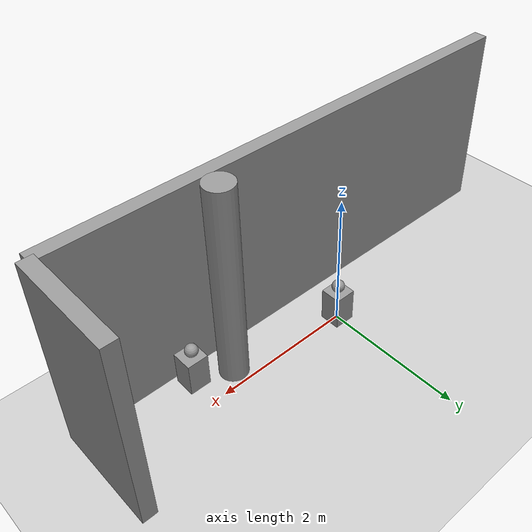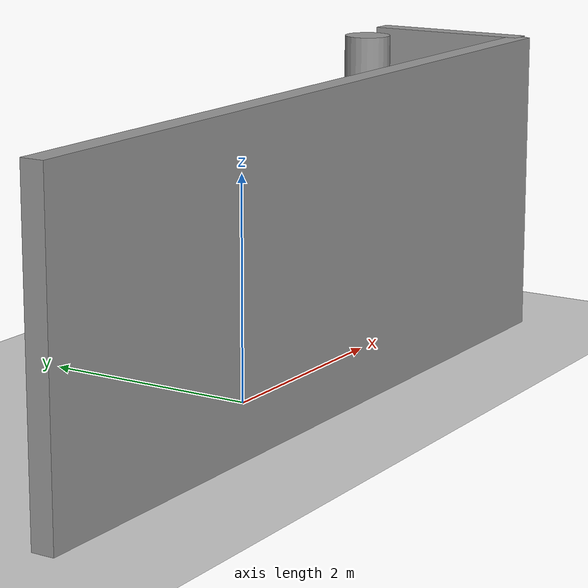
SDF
<sdf version="1.6">
 <world name="default">
  <model name="ground_plane">
   <static>1</static>
   <link name="link">
    <collision name="collision">
     <geometry><plane><normal>0 0 1</normal><size>100 100</size></plane></geometry>
     <surface><friction><ode><mu>100</mu><mu2>50</mu2></ode></friction></surface>
    </collision>
    <visual name="visual">
     <cast_shadows>0</cast_shadows>
     <geometry><plane><normal>0 0 1</normal><size>100 100</size></plane></geometry>
     <material>
      <script><uri>file://media/materials/scripts/gazebo.material</uri><name>Gazebo/Grey</name></script>
     </material>
    </visual>
    <velocity_decay><linear>0</linear><angular>0</angular></velocity_decay>
   </link>
  </model>
  <model name="grey_wall_3_0">
   <link name="link">
    <pose>0 0 1.4 0 -0 0</pose>
    <velocity_decay><linear>0</linear><angular>0</angular></velocity_decay>
    <inertial>
     <mass>1</mass>
     <inertia><ixx>1</ixx><ixy>0</ixy><ixz>0</ixz><iyy>1</iyy><iyz>0</iyz><izz>1</izz></inertia>
    </inertial>
    <visual name="visual">
     <cast_shadows>0</cast_shadows>
     <geometry><box><size>1.52 0.2 2.8</size></box></geometry>
     <material>
      <script>
       <uri>model://grey_wall/materials/scripts</uri>
       <uri>model://grey_wall/materials/textures</uri>
       <name>vrc/grey_wall</name>
      </script>
      <ambient>1 1 1 1</ambient>
      <diffuse>1 1 1 1</diffuse>
      <specular>0 0 0 1</specular>
      <emissive>0 0 0 1</emissive>
      <shader type="vertex"><normal_map>__default__</normal_map></shader>
     </material>
    </visual>
    <collision name="collision">
     <geometry><box><size>1.52 0.2 2.8</size></box></geometry>
     <surface>
      <friction>
       <ode><mu>1</mu><mu2>1</mu2><fdir1>0 0 0</fdir1><slip1>0</slip1><slip2>0</slip2></ode>
       <torsional>
        <coefficient>1</coefficient>
        <patch_radius>0</patch_radius>
        <surface_radius>0</surface_radius>
        <use_patch_radius>1</use_patch_radius>
        <ode><slip>0</slip></ode>
       </torsional>
      </friction>
      <bounce><restitution_coefficient>0</restitution_coefficient><threshold>1e+06</threshold></bounce>
      <contact>
       <collide_without_contact>0</collide_without_contact>
       <collide_without_contact_bitmask>1</collide_without_contact_bitmask>
       <collide_bitmask>1</collide_bitmask>
       <ode>
        <soft_cfm>0</soft_cfm>
        <soft_erp>0.2</soft_erp>
        <kp>1e+13</kp>
        <kd>1</kd>
        <max_vel>0.01</max_vel>
        <min_depth>0</min_depth>
       </ode>
       <bullet>
        <split_impulse>1</split_impulse>
        <split_impulse_penetration_threshold>-0.01</split_impulse_penetration_threshold>
        <soft_cfm>0</soft_cfm>
        <soft_erp>0.2</soft_erp>
        <kp>1e+13</kp>
        <kd>1</kd>
       </bullet>
      </contact>
     </surface>
    </collision>
   </link>
   <static>1</static>
   <pose>3.66 0 0 0 0 -1.57102</pose>
  </model>
  <model name="grey_wall_0_0">
   <link name="link">
    <pose>0 0 1.4 0 -0 0</pose>
    <velocity_decay><linear>0</linear><angular>0</angular></velocity_decay>
    <inertial>
     <mass>1</mass>
     <inertia><ixx>1</ixx><ixy>0</ixy><ixz>0</ixz><iyy>1</iyy><iyz>0</iyz><izz>1</izz></inertia>
    </inertial>
    <visual name="visual">
     <cast_shadows>0</cast_shadows>
     <geometry><box><size>7.32 0.2 2.8</size></box></geometry>
     <material>
      <script>
       <uri>model://grey_wall/materials/scripts</uri>
       <uri>model://grey_wall/materials/textures</uri>
       <name>vrc/grey_wall</name>
      </script>
      <ambient>1 1 1 1</ambient>
      <diffuse>1 1 1 1</diffuse>
      <specular>0 0 0 1</specular>
      <emissive>0 0 0 1</emissive>
      <shader type="vertex"><normal_map>__default__</normal_map></shader>
     </material>
    </visual>
    <collision name="collision">
     <geometry><box><size>7.32 0.2 2.8</size></box></geometry>
     <surface>
      <friction>
       <ode><mu>1</mu><mu2>1</mu2><fdir1>0 0 0</fdir1><slip1>0</slip1><slip2>0</slip2></ode>
       <torsional>
        <coefficient>1</coefficient>
        <patch_radius>0</patch_radius>
        <surface_radius>0</surface_radius>
        <use_patch_radius>1</use_patch_radius>
        <ode><slip>0</slip></ode>
       </torsional>
      </friction>
      <bounce><restitution_coefficient>0</restitution_coefficient><threshold>1e+06</threshold></bounce>
      <contact>
       <collide_without_contact>0</collide_without_contact>
       <collide_without_contact_bitmask>1</collide_without_contact_bitmask>
       <collide_bitmask>1</collide_bitmask>
       <ode>
        <soft_cfm>0</soft_cfm>
        <soft_erp>0.2</soft_erp>
        <kp>1e+13</kp>
        <kd>1</kd>
        <max_vel>0.01</max_vel>
        <min_depth>0</min_depth>
       </ode>
       <bullet>
        <split_impulse>1</split_impulse>
        <split_impulse_penetration_threshold>-0.01</split_impulse_penetration_threshold>
        <soft_cfm>0</soft_cfm>
        <soft_erp>0.2</soft_erp>
        <kp>1e+13</kp>
        <kd>1</kd>
       </bullet>
      </contact>
     </surface>
    </collision>
   </link>
   <static>1</static>
   <pose>0 -0.76 0 0 -0 0</pose>
  </model>
  <model name="fuel_cutting_station_1_clone_1">
   <link name="link">
    <pose>0 0 -0.25 0 -0 0</pose>
    <inertial>
     <mass>1</mass>
     <inertia>
      <ixx>0.166667</ixx>
      <ixy>0</ixy>
      <ixz>0</ixz>
      <iyy>0.166667</iyy>
      <iyz>0</iyz>
      <izz>0.166667</izz>
     </inertia>
    </inertial>
    <visual name="visual">
     <geometry><box><size>0.3 0.3 0.5</size></box></geometry>
     <material>
      <script><name>Gazebo/Grey</name><uri>file://media/materials/scripts/gazebo.material</uri></script>
      <ambient>0.3 0.3 0.3 1</ambient>
      <diffuse>0.7 0.7 0.7 1</diffuse>
      <specular>0.01 0.01 0.01 1</specular>
      <emissive>0 0 0 1</emissive>
      <shader type="vertex"><normal_map>__default__</normal_map></shader>
     </material>
    </visual>
    <collision name="collision">
     <geometry><box><size>1 1 1</size></box></geometry>
     <surface>
      <friction>
       <ode><mu>1</mu><mu2>1</mu2><fdir1>0 0 0</fdir1><slip1>0</slip1><slip2>0</slip2></ode>
       <torsional>
        <coefficient>1</coefficient>
        <patch_radius>0</patch_radius>
        <surface_radius>0</surface_radius>
        <use_patch_radius>1</use_patch_radius>
        <ode><slip>0</slip></ode>
       </torsional>
      </friction>
      <bounce><restitution_coefficient>0</restitution_coefficient><threshold>1e+06</threshold></bounce>
      <contact>
       <collide_without_contact>0</collide_without_contact>
       <collide_without_contact_bitmask>1</collide_without_contact_bitmask>
       <collide_bitmask>1</collide_bitmask>
       <ode>
        <soft_cfm>0</soft_cfm>
        <soft_erp>0.2</soft_erp>
        <kp>1e+13</kp>
        <kd>1</kd>
        <max_vel>0.01</max_vel>
        <min_depth>0</min_depth>
       </ode>
       <bullet>
        <split_impulse>1</split_impulse>
        <split_impulse_penetration_threshold>-0.01</split_impulse_penetration_threshold>
        <soft_cfm>0</soft_cfm>
        <soft_erp>0.2</soft_erp>
        <kp>1e+13</kp>
        <kd>1</kd>
       </bullet>
      </contact>
     </surface>
    </collision>
   </link>
   <static>0</static>
   <pose>0 0 0.5 0 -0 0</pose>
  </model>
  <model name="fuel_cutting_station_1_0">
   <link name="link">
    <pose>0 0 -0.25 0 -0 0</pose>
    <inertial>
     <mass>1</mass>
     <inertia>
      <ixx>0.166667</ixx>
      <ixy>0</ixy>
      <ixz>0</ixz>
      <iyy>0.166667</iyy>
      <iyz>0</iyz>
      <izz>0.166667</izz>
     </inertia>
    </inertial>
    <visual name="visual">
     <geometry><box><size>0.3 0.3 0.5</size></box></geometry>
     <material>
      <script><name>Gazebo/Grey</name><uri>file://media/materials/scripts/gazebo.material</uri></script>
      <ambient>0.3 0.3 0.3 1</ambient>
      <diffuse>0.7 0.7 0.7 1</diffuse>
      <specular>0.01 0.01 0.01 1</specular>
      <emissive>0 0 0 1</emissive>
      <shader type="vertex"><normal_map>__default__</normal_map></shader>
     </material>
    </visual>
    <collision name="collision">
     <geometry><box><size>0.3 0.3 0.5</size></box></geometry>
     <surface>
      <friction>
       <ode><mu>1</mu><mu2>1</mu2><fdir1>0 0 0</fdir1><slip1>0</slip1><slip2>0</slip2></ode>
       <torsional>
        <coefficient>1</coefficient>
        <patch_radius>0</patch_radius>
        <surface_radius>0</surface_radius>
        <use_patch_radius>1</use_patch_radius>
        <ode><slip>0</slip></ode>
       </torsional>
      </friction>
      <bounce><restitution_coefficient>0</restitution_coefficient><threshold>1e+06</threshold></bounce>
      <contact>
       <collide_without_contact>0</collide_without_contact>
       <collide_without_contact_bitmask>1</collide_without_contact_bitmask>
       <collide_bitmask>1</collide_bitmask>
       <ode>
        <soft_cfm>0</soft_cfm>
        <soft_erp>0.2</soft_erp>
        <kp>1e+13</kp>
        <kd>1</kd>
        <max_vel>0.01</max_vel>
        <min_depth>0</min_depth>
       </ode>
       <bullet>
        <split_impulse>1</split_impulse>
        <split_impulse_penetration_threshold>-0.01</split_impulse_penetration_threshold>
        <soft_cfm>0</soft_cfm>
        <soft_erp>0.2</soft_erp>
        <kp>1e+13</kp>
        <kd>1</kd>
       </bullet>
      </contact>
     </surface>
    </collision>
   </link>
   <static>0</static>
   <pose>2.16 -0.44 0.5 0 -0 0</pose>
  </model>
  <model name="shippint_cask_0_clone_0_0_0">
   <link name="link">
    <pose>0 0 -1.5 0 -0 0</pose>
    <inertial>
     <mass>1</mass>
     <inertia><ixx>0.145833</ixx><ixy>0</ixy><ixz>0</ixz><iyy>0.145833</iyy><iyz>0</iyz><izz>0.125</izz></inertia>
    </inertial>
    <visual name="visual">
     <geometry><cylinder><radius>0.2</radius><length>3</length></cylinder></geometry>
     <material>
      <script><name>Gazebo/Grey</name><uri>file://media/materials/scripts/gazebo.material</uri></script>
      <ambient>0.3 0.3 0.3 1</ambient>
      <diffuse>0.7 0.7 0.7 1</diffuse>
      <specular>0.01 0.01 0.01 1</specular>
      <emissive>0 0 0 1</emissive>
      <shader type="vertex"><normal_map>__default__</normal_map></shader>
     </material>
    </visual>
    <collision name="collision">
     <geometry><cylinder><radius>0.2</radius><length>3</length></cylinder></geometry>
     <surface>
      <friction>
       <ode><mu>1</mu><mu2>1</mu2><fdir1>0 0 0</fdir1><slip1>0</slip1><slip2>0</slip2></ode>
       <torsional>
        <coefficient>1</coefficient>
        <patch_radius>0</patch_radius>
        <surface_radius>0</surface_radius>
        <use_patch_radius>1</use_patch_radius>
        <ode><slip>0</slip></ode>
       </torsional>
      </friction>
      <bounce><restitution_coefficient>0</restitution_coefficient><threshold>1e+06</threshold></bounce>
      <contact>
       <collide_without_contact>0</collide_without_contact>
       <collide_without_contact_bitmask>1</collide_without_contact_bitmask>
       <collide_bitmask>1</collide_bitmask>
       <ode>
        <soft_cfm>0</soft_cfm>
        <soft_erp>0.2</soft_erp>
        <kp>1e+13</kp>
        <kd>1</kd>
        <max_vel>0.01</max_vel>
        <min_depth>0</min_depth>
       </ode>
       <bullet>
        <split_impulse>1</split_impulse>
        <split_impulse_penetration_threshold>-0.01</split_impulse_penetration_threshold>
        <soft_cfm>0</soft_cfm>
        <soft_erp>0.2</soft_erp>
        <kp>1e+13</kp>
        <kd>1</kd>
       </bullet>
      </contact>
     </surface>
    </collision>
   </link>
   <static>0</static>
   <pose>1.66 -0.24 3 0 -0 0</pose>
  </model>
  <model name="source_2">
   <link name="link">
    <inertial>
     <mass>1</mass>
     <inertia><ixx>0.1</ixx><ixy>0</ixy><ixz>0</ixz><iyy>0.1</iyy><iyz>0</iyz><izz>0.1</izz></inertia>
    </inertial>
    <visual name="visual">
     <geometry><sphere><radius>0.09</radius></sphere></geometry>
     <material>
      <script><name>Gazebo/Grey</name><uri>file://media/materials/scripts/gazebo.material</uri></script>
      <ambient>0.3 0.3 0.3 1</ambient>
      <diffuse>0.7 0.7 0.7 1</diffuse>
      <specular>0.01 0.01 0.01 1</specular>
      <emissive>0 0 0 1</emissive>
      <shader type="vertex"><normal_map>__default__</normal_map></shader>
     </material>
    </visual>
    <collision name="collision">
     <geometry><sphere><radius>0.091544</radius></sphere></geometry>
     <surface>
      <friction>
       <ode><mu>1</mu><mu2>1</mu2><fdir1>0 0 0</fdir1><slip1>0</slip1><slip2>0</slip2></ode>
       <torsional>
        <coefficient>1</coefficient>
        <patch_radius>0</patch_radius>
        <surface_radius>0</surface_radius>
        <use_patch_radius>1</use_patch_radius>
        <ode><slip>0</slip></ode>
       </torsional>
      </friction>
      <bounce><restitution_coefficient>0</restitution_coefficient><threshold>1e+06</threshold></bounce>
      <contact>
       <collide_without_contact>0</collide_without_contact>
       <collide_without_contact_bitmask>1</collide_without_contact_bitmask>
       <collide_bitmask>1</collide_bitmask>
       <ode>
        <soft_cfm>0</soft_cfm>
        <soft_erp>0.2</soft_erp>
        <kp>1e+13</kp>
        <kd>1</kd>
        <max_vel>0.01</max_vel>
        <min_depth>0</min_depth>
       </ode>
       <bullet>
        <split_impulse>1</split_impulse>
        <split_impulse_penetration_threshold>-0.01</split_impulse_penetration_threshold>
        <soft_cfm>0</soft_cfm>
        <soft_erp>0.2</soft_erp>
        <kp>1e+13</kp>
        <kd>1</kd>
       </bullet>
      </contact>
     </surface>
    </collision>
   </link>
   <static>0</static>
   <pose>0 0 0.59 0 -0 0</pose>
  </model>
  <model name="source_2_clone_0">
   <link name="link">
    <inertial>
     <mass>1</mass>
     <inertia><ixx>0.1</ixx><ixy>0</ixy><ixz>0</ixz><iyy>0.1</iyy><iyz>0</iyz><izz>0.1</izz></inertia>
    </inertial>
    <visual name="visual">
     <geometry><sphere><radius>0.09</radius></sphere></geometry>
     <material>
      <script><name>Gazebo/Grey</name><uri>file://media/materials/scripts/gazebo.material</uri></script>
      <ambient>0.3 0.3 0.3 1</ambient>
      <diffuse>0.7 0.7 0.7 1</diffuse>
      <specular>0.01 0.01 0.01 1</specular>
      <emissive>0 0 0 1</emissive>
      <shader type="vertex"><normal_map>__default__</normal_map></shader>
     </material>
    </visual>
    <collision name="collision">
     <geometry><sphere><radius>0.091544</radius></sphere></geometry>
     <surface>
      <friction>
       <ode><mu>1</mu><mu2>1</mu2><fdir1>0 0 0</fdir1><slip1>0</slip1><slip2>0</slip2></ode>
       <torsional>
        <coefficient>1</coefficient>
        <patch_radius>0</patch_radius>
        <surface_radius>0</surface_radius>
        <use_patch_radius>1</use_patch_radius>
        <ode><slip>0</slip></ode>
       </torsional>
      </friction>
      <bounce><restitution_coefficient>0</restitution_coefficient><threshold>1e+06</threshold></bounce>
      <contact>
       <collide_without_contact>0</collide_without_contact>
       <collide_without_contact_bitmask>1</collide_without_contact_bitmask>
       <collide_bitmask>1</collide_bitmask>
       <ode>
        <soft_cfm>0</soft_cfm>
        <soft_erp>0.2</soft_erp>
        <kp>1e+13</kp>
        <kd>1</kd>
        <max_vel>0.01</max_vel>
        <min_depth>0</min_depth>
       </ode>
       <bullet>
        <split_impulse>1</split_impulse>
        <split_impulse_penetration_threshold>-0.01</split_impulse_penetration_threshold>
        <soft_cfm>0</soft_cfm>
        <soft_erp>0.2</soft_erp>
        <kp>1e+13</kp>
        <kd>1</kd>
       </bullet>
      </contact>
     </surface>
    </collision>
   </link>
   <static>0</static>
   <pose>2.14785 -0.42998 0.59 0 -0 0</pose>
  </model>
 </world>
</sdf>
